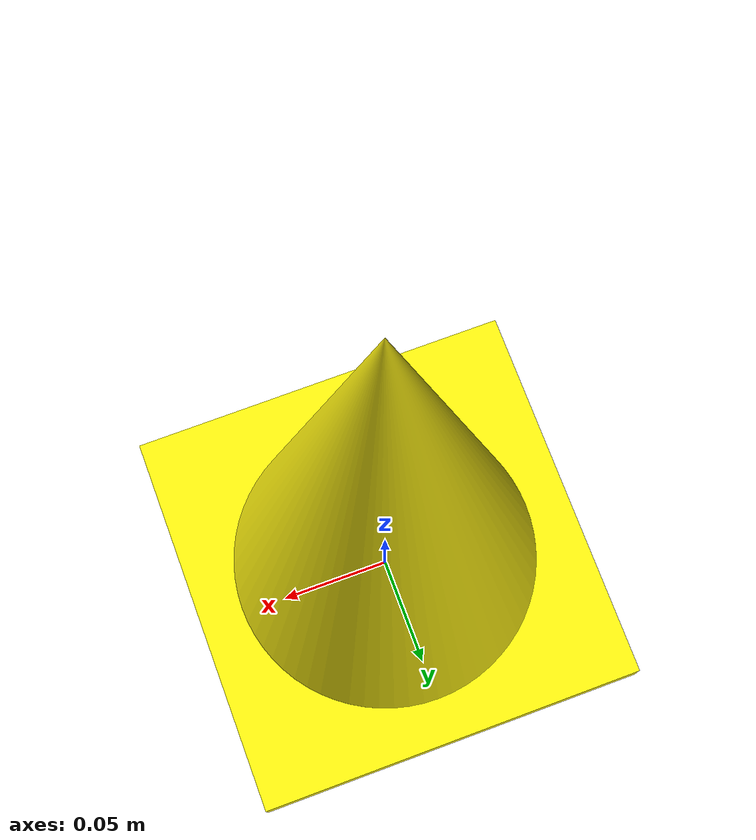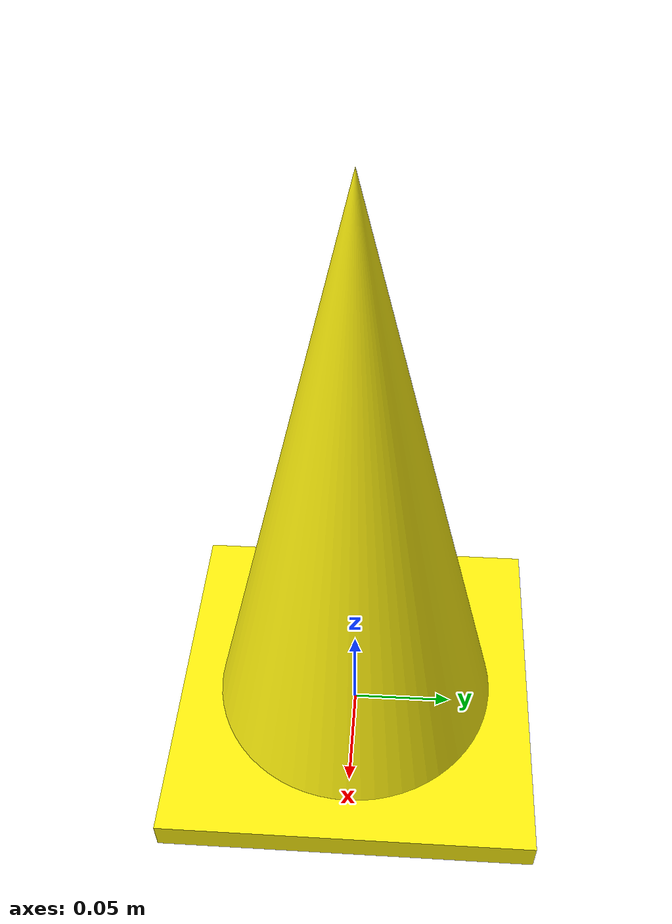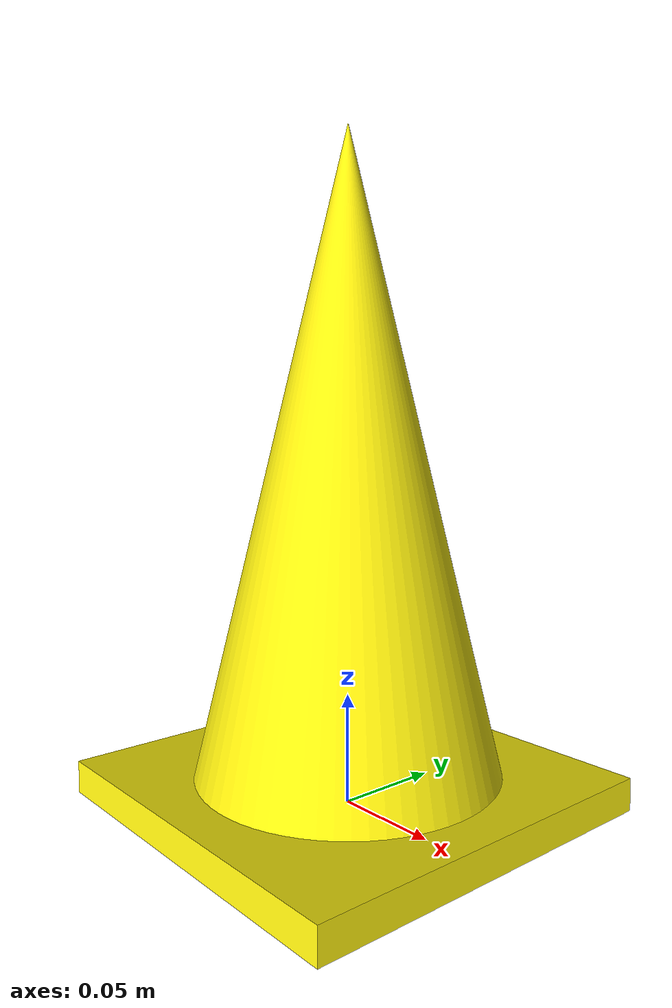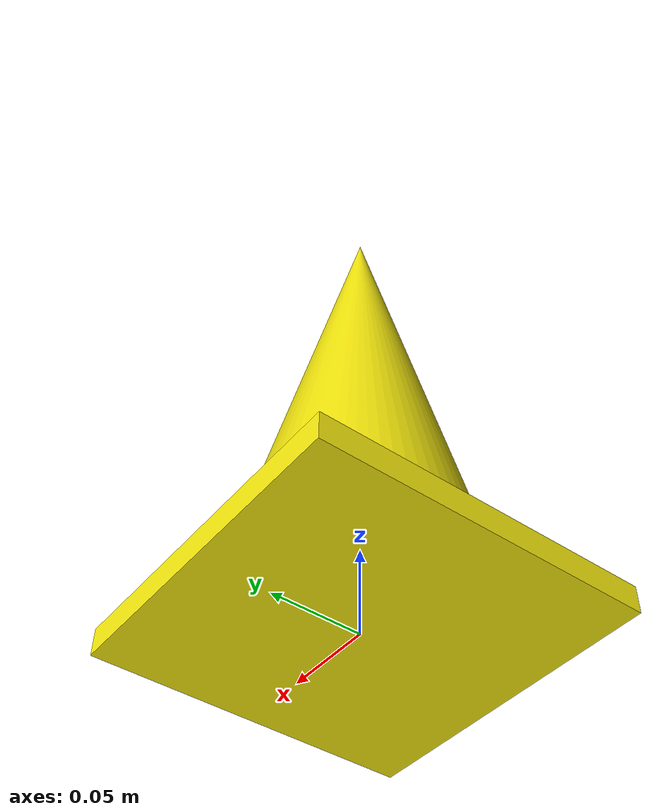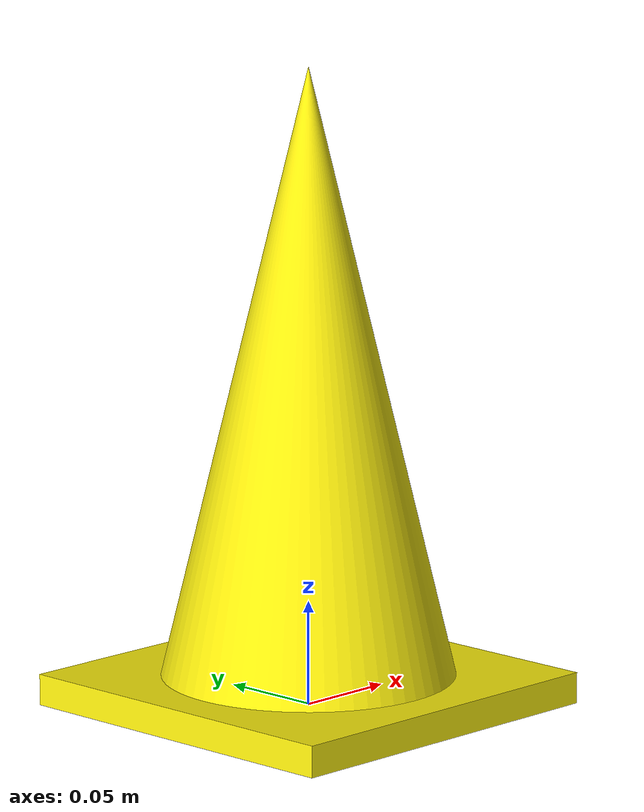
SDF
<?xml version="1.0" ?>
<sdf version="1.6">
  <!--
    FSAE / lab-style traffic cone, ~12 inches (305 mm) tall.
    See hazard_cone_red/model.sdf for shape commentary.
    Origin: bottom-center of the skirt (sits flush on z=0).
  -->
  <model name="hazard_cone_yellow">
    <static>true</static>
    <link name="link">
      <collision name="skirt_col">
        <pose>0 0 0.0075 0 0 0</pose>
        <geometry><box><size>0.18 0.18 0.015</size></box></geometry>
      </collision>
      <visual name="skirt_vis">
        <pose>0 0 0.0075 0 0 0</pose>
        <geometry><box><size>0.18 0.18 0.015</size></box></geometry>
        <material>
          <ambient>0.95 0.85 0.05 1</ambient>
          <diffuse>1.0 0.95 0.05 1</diffuse>
          <specular>0.1 0.1 0.1 1</specular>
          <emissive>0.15 0.12 0.0 1</emissive>
        </material>
      </visual>

      <visual name="body_vis">
        <pose>0 0 0.015 0 0 0</pose>
        <geometry>
          <mesh>
            <uri>model://hazard_cone_yellow/cone.obj</uri>
            <scale>0.07 0.07 0.290</scale>
          </mesh>
        </geometry>
        <material>
          <ambient>0.95 0.85 0.05 1</ambient>
          <diffuse>1.0 0.95 0.05 1</diffuse>
          <specular>0.1 0.1 0.1 1</specular>
          <emissive>0.15 0.12 0.0 1</emissive>
        </material>
      </visual>

      <collision name="body_col">
        <pose>0 0 0.16 0 0 0</pose>
        <geometry><cylinder><radius>0.04</radius><length>0.290</length></cylinder></geometry>
      </collision>
    </link>
  </model>
</sdf>
